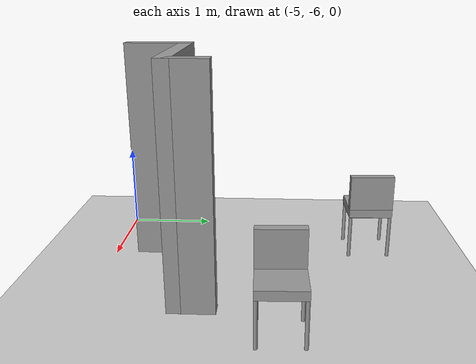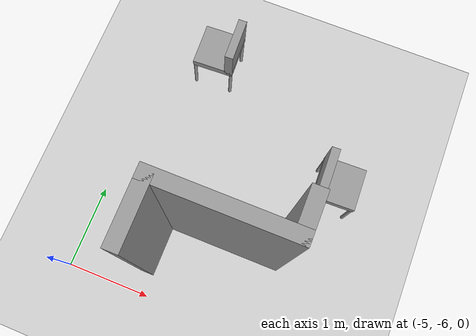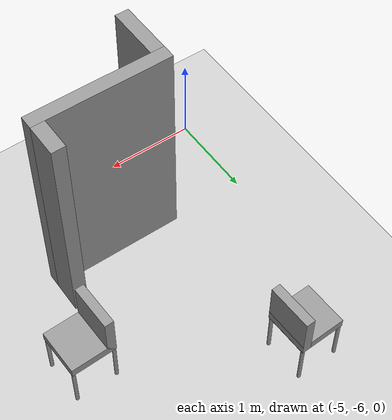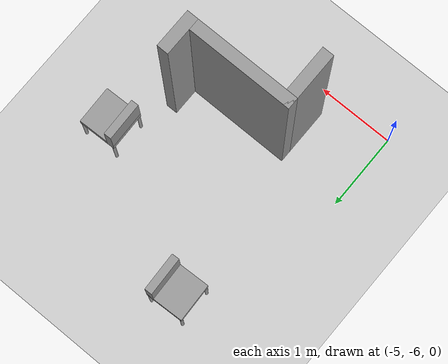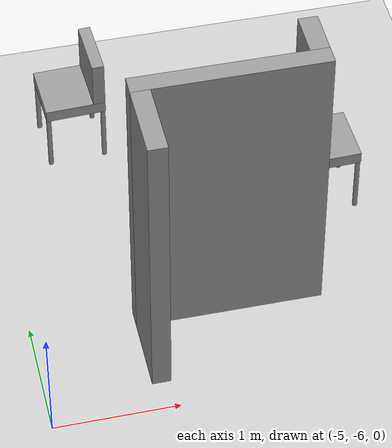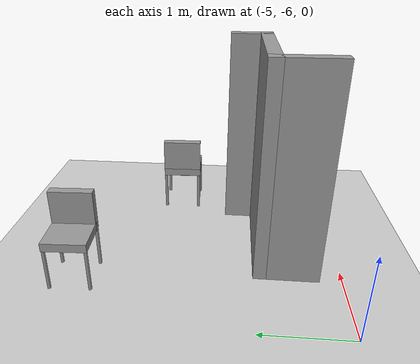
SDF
<sdf version="1.6">
 <world name="default">
  <model name="ground_plane">
   <static>1</static>
   <link name="link">
    <collision name="collision">
     <geometry><plane><normal>0 0 1</normal><size>100 100</size></plane></geometry>
     <surface>
      <contact><collide_bitmask>65535</collide_bitmask></contact>
      <friction><ode><mu>100</mu><mu2>50</mu2></ode></friction>
     </surface>
    </collision>
    <visual name="visual">
     <cast_shadows>0</cast_shadows>
     <geometry><plane><normal>0 0 1</normal><size>100 100</size></plane></geometry>
     <material>
      <script><uri>file://media/materials/scripts/gazebo.material</uri><name>Gazebo/Grey</name></script>
     </material>
    </visual>
   </link>
  </model>
  <model name="dunder_mifflin_scranton_full">
   <pose>4.5312 0.479645 0 0 -0 0</pose>
   <link name="Wall_10">
    <collision name="Wall_10_Collision">
     <geometry><box><size>1.5 0.15 2.5</size></box></geometry>
     <pose>0 0 1.25 0 -0 0</pose>
    </collision>
    <visual name="Wall_10_Visual">
     <pose>0 0 1.25 0 -0 0</pose>
     <geometry><box><size>1.5 0.15 2.5</size></box></geometry>
     <material>
      <script><uri>file://media/materials/scripts/gazebo.material</uri><name>Gazebo/Grey</name></script>
      <ambient>1 1 1 1</ambient>
     </material>
     <meta><layer>0</layer></meta>
    </visual>
    <pose>-7.95712 -5.55 0 0 -0 3.14159</pose>
   </link>
   <link name="Wall_11">
    <collision name="Wall_11_Collision">
     <geometry><box><size>0.75 0.15 2.5</size></box></geometry>
     <pose>0 0 1.25 0 -0 0</pose>
    </collision>
    <visual name="Wall_11_Visual">
     <pose>0 0 1.25 0 -0 0</pose>
     <geometry><box><size>0.75 0.15 2.5</size></box></geometry>
     <material>
      <script><uri>file://media/materials/scripts/gazebo.material</uri><name>Gazebo/Grey</name></script>
      <ambient>1 1 1 1</ambient>
     </material>
     <meta><layer>0</layer></meta>
    </visual>
    <pose>-8.63212 -5.85 0 0 -0 -1.5708</pose>
   </link>
   <link name="Wall_9">
    <collision name="Wall_9_Collision">
     <geometry><box><size>0.5 0.15 2.5</size></box></geometry>
     <pose>0 0 1.25 0 -0 0</pose>
    </collision>
    <visual name="Wall_9_Visual">
     <pose>0 0 1.25 0 -0 0</pose>
     <geometry><box><size>0.5 0.15 2.5</size></box></geometry>
     <material>
      <script><uri>file://media/materials/scripts/gazebo.material</uri><name>Gazebo/Grey</name></script>
      <ambient>1 1 1 1</ambient>
     </material>
     <meta><layer>0</layer></meta>
    </visual>
    <pose>-7.28212 -5.375 0 0 -0 -1.5708</pose>
   </link>
   <static>1</static>
  </model>
  <model name="chair_3">
   <link name="link_0">
    <inertial>
     <mass>1</mass>
     <inertia><ixx>0.145833</ixx><ixy>0</ixy><ixz>0</ixz><iyy>0.145833</iyy><iyz>0</iyz><izz>0.125</izz></inertia>
    </inertial>
    <pose>-0.23 -0.19667 -0.280001 0 -0 0</pose>
    <visual name="visual">
     <geometry><cylinder><radius>0.02</radius><length>0.5</length></cylinder></geometry>
     <material>
      <lighting>1</lighting>
      <script><uri>file://media/materials/scripts/gazebo.material</uri><name>Gazebo/Grey</name></script>
      <shader type="vertex"><normal_map>__default__</normal_map></shader>
      <ambient>0.3 0.3 0.3 1</ambient>
      <diffuse>0.7 0.7 0.7 1</diffuse>
      <specular>0.01 0.01 0.01 1</specular>
      <emissive>0 0 0 1</emissive>
     </material>
    </visual>
    <collision name="collision">
     <geometry><cylinder><radius>0.02</radius><length>0.5</length></cylinder></geometry>
     <surface>
      <friction>
       <ode><mu>1</mu><mu2>1</mu2><fdir1>0 0 0</fdir1><slip1>0</slip1><slip2>0</slip2></ode>
       <torsional>
        <coefficient>1</coefficient>
        <patch_radius>0</patch_radius>
        <surface_radius>0</surface_radius>
        <use_patch_radius>1</use_patch_radius>
        <ode><slip>0</slip></ode>
       </torsional>
      </friction>
      <bounce><restitution_coefficient>0</restitution_coefficient><threshold>1e+06</threshold></bounce>
      <contact>
       <collide_without_contact>0</collide_without_contact>
       <collide_without_contact_bitmask>1</collide_without_contact_bitmask>
       <collide_bitmask>1</collide_bitmask>
       <ode>
        <soft_cfm>0</soft_cfm>
        <soft_erp>0.2</soft_erp>
        <kp>1e+13</kp>
        <kd>1</kd>
        <max_vel>0.01</max_vel>
        <min_depth>0</min_depth>
       </ode>
       <bullet>
        <split_impulse>1</split_impulse>
        <split_impulse_penetration_threshold>-0.01</split_impulse_penetration_threshold>
        <soft_cfm>0</soft_cfm>
        <soft_erp>0.2</soft_erp>
        <kp>1e+13</kp>
        <kd>1</kd>
       </bullet>
      </contact>
     </surface>
    </collision>
   </link>
   <link name="link_0_clone">
    <inertial>
     <mass>1</mass>
     <inertia><ixx>0.145833</ixx><ixy>0</ixy><ixz>0</ixz><iyy>0.145833</iyy><iyz>0</iyz><izz>0.125</izz></inertia>
    </inertial>
    <pose>0.23 -0.19667 -0.280001 0 -0 0</pose>
    <visual name="visual">
     <geometry><cylinder><radius>0.02</radius><length>0.5</length></cylinder></geometry>
     <material>
      <lighting>1</lighting>
      <script><uri>file://media/materials/scripts/gazebo.material</uri><name>Gazebo/Grey</name></script>
      <shader type="vertex"><normal_map>__default__</normal_map></shader>
      <ambient>0.3 0.3 0.3 1</ambient>
      <diffuse>0.7 0.7 0.7 1</diffuse>
      <specular>0.01 0.01 0.01 1</specular>
      <emissive>0 0 0 1</emissive>
     </material>
    </visual>
    <collision name="collision">
     <geometry><cylinder><radius>0.02</radius><length>0.5</length></cylinder></geometry>
     <surface>
      <friction>
       <ode><mu>1</mu><mu2>1</mu2><fdir1>0 0 0</fdir1><slip1>0</slip1><slip2>0</slip2></ode>
       <torsional>
        <coefficient>1</coefficient>
        <patch_radius>0</patch_radius>
        <surface_radius>0</surface_radius>
        <use_patch_radius>1</use_patch_radius>
        <ode><slip>0</slip></ode>
       </torsional>
      </friction>
      <bounce><restitution_coefficient>0</restitution_coefficient><threshold>1e+06</threshold></bounce>
      <contact>
       <collide_without_contact>0</collide_without_contact>
       <collide_without_contact_bitmask>1</collide_without_contact_bitmask>
       <collide_bitmask>1</collide_bitmask>
       <ode>
        <soft_cfm>0</soft_cfm>
        <soft_erp>0.2</soft_erp>
        <kp>1e+13</kp>
        <kd>1</kd>
        <max_vel>0.01</max_vel>
        <min_depth>0</min_depth>
       </ode>
       <bullet>
        <split_impulse>1</split_impulse>
        <split_impulse_penetration_threshold>-0.01</split_impulse_penetration_threshold>
        <soft_cfm>0</soft_cfm>
        <soft_erp>0.2</soft_erp>
        <kp>1e+13</kp>
        <kd>1</kd>
       </bullet>
      </contact>
     </surface>
    </collision>
   </link>
   <link name="link_0_clone_0">
    <inertial>
     <mass>1</mass>
     <inertia><ixx>0.145833</ixx><ixy>0</ixy><ixz>0</ixz><iyy>0.145833</iyy><iyz>0</iyz><izz>0.125</izz></inertia>
    </inertial>
    <pose>0.23 0.26333 -0.280001 0 -0 0</pose>
    <visual name="visual">
     <geometry><cylinder><radius>0.02</radius><length>0.5</length></cylinder></geometry>
     <material>
      <lighting>1</lighting>
      <script><uri>file://media/materials/scripts/gazebo.material</uri><name>Gazebo/Grey</name></script>
      <shader type="vertex"><normal_map>__default__</normal_map></shader>
      <ambient>0.3 0.3 0.3 1</ambient>
      <diffuse>0.7 0.7 0.7 1</diffuse>
      <specular>0.01 0.01 0.01 1</specular>
      <emissive>0 0 0 1</emissive>
     </material>
    </visual>
    <collision name="collision">
     <geometry><cylinder><radius>0.02</radius><length>0.5</length></cylinder></geometry>
     <surface>
      <friction>
       <ode><mu>1</mu><mu2>1</mu2><fdir1>0 0 0</fdir1><slip1>0</slip1><slip2>0</slip2></ode>
       <torsional>
        <coefficient>1</coefficient>
        <patch_radius>0</patch_radius>
        <surface_radius>0</surface_radius>
        <use_patch_radius>1</use_patch_radius>
        <ode><slip>0</slip></ode>
       </torsional>
      </friction>
      <bounce><restitution_coefficient>0</restitution_coefficient><threshold>1e+06</threshold></bounce>
      <contact>
       <collide_without_contact>0</collide_without_contact>
       <collide_without_contact_bitmask>1</collide_without_contact_bitmask>
       <collide_bitmask>1</collide_bitmask>
       <ode>
        <soft_cfm>0</soft_cfm>
        <soft_erp>0.2</soft_erp>
        <kp>1e+13</kp>
        <kd>1</kd>
        <max_vel>0.01</max_vel>
        <min_depth>0</min_depth>
       </ode>
       <bullet>
        <split_impulse>1</split_impulse>
        <split_impulse_penetration_threshold>-0.01</split_impulse_penetration_threshold>
        <soft_cfm>0</soft_cfm>
        <soft_erp>0.2</soft_erp>
        <kp>1e+13</kp>
        <kd>1</kd>
       </bullet>
      </contact>
     </surface>
    </collision>
   </link>
   <link name="link_0_clone_1">
    <inertial>
     <mass>1</mass>
     <inertia><ixx>0.145833</ixx><ixy>0</ixy><ixz>0</ixz><iyy>0.145833</iyy><iyz>0</iyz><izz>0.125</izz></inertia>
    </inertial>
    <pose>-0.23 0.26333 -0.280001 0 -0 0</pose>
    <visual name="visual">
     <geometry><cylinder><radius>0.02</radius><length>0.5</length></cylinder></geometry>
     <material>
      <lighting>1</lighting>
      <script><uri>file://media/materials/scripts/gazebo.material</uri><name>Gazebo/Grey</name></script>
      <shader type="vertex"><normal_map>__default__</normal_map></shader>
      <ambient>0.3 0.3 0.3 1</ambient>
      <diffuse>0.7 0.7 0.7 1</diffuse>
      <specular>0.01 0.01 0.01 1</specular>
      <emissive>0 0 0 1</emissive>
     </material>
    </visual>
    <collision name="collision">
     <geometry><cylinder><radius>0.02</radius><length>0.5</length></cylinder></geometry>
     <surface>
      <friction>
       <ode><mu>1</mu><mu2>1</mu2><fdir1>0 0 0</fdir1><slip1>0</slip1><slip2>0</slip2></ode>
       <torsional>
        <coefficient>1</coefficient>
        <patch_radius>0</patch_radius>
        <surface_radius>0</surface_radius>
        <use_patch_radius>1</use_patch_radius>
        <ode><slip>0</slip></ode>
       </torsional>
      </friction>
      <bounce><restitution_coefficient>0</restitution_coefficient><threshold>1e+06</threshold></bounce>
      <contact>
       <collide_without_contact>0</collide_without_contact>
       <collide_without_contact_bitmask>1</collide_without_contact_bitmask>
       <collide_bitmask>1</collide_bitmask>
       <ode>
        <soft_cfm>0</soft_cfm>
        <soft_erp>0.2</soft_erp>
        <kp>1e+13</kp>
        <kd>1</kd>
        <max_vel>0.01</max_vel>
        <min_depth>0</min_depth>
       </ode>
       <bullet>
        <split_impulse>1</split_impulse>
        <split_impulse_penetration_threshold>-0.01</split_impulse_penetration_threshold>
        <soft_cfm>0</soft_cfm>
        <soft_erp>0.2</soft_erp>
        <kp>1e+13</kp>
        <kd>1</kd>
       </bullet>
      </contact>
     </surface>
    </collision>
   </link>
   <link name="link_2">
    <inertial>
     <mass>1</mass>
     <inertia>
      <ixx>0.166667</ixx>
      <ixy>0</ixy>
      <ixz>0</ixz>
      <iyy>0.166667</iyy>
      <iyz>0</iyz>
      <izz>0.166667</izz>
     </inertia>
    </inertial>
    <pose>0 0.03333 0.019999 0 -0 0</pose>
    <visual name="visual">
     <geometry><box><size>0.5 0.5 0.1</size></box></geometry>
     <material>
      <lighting>1</lighting>
      <script><uri>file://media/materials/scripts/gazebo.material</uri><name>Gazebo/Grey</name></script>
      <shader type="vertex"><normal_map>__default__</normal_map></shader>
      <ambient>0.3 0.3 0.3 1</ambient>
      <diffuse>0.7 0.7 0.7 1</diffuse>
      <specular>0.01 0.01 0.01 1</specular>
      <emissive>0 0 0 1</emissive>
     </material>
    </visual>
    <collision name="collision">
     <geometry><box><size>0.5 0.5 0.1</size></box></geometry>
     <surface>
      <friction>
       <ode><mu>1</mu><mu2>1</mu2><fdir1>0 0 0</fdir1><slip1>0</slip1><slip2>0</slip2></ode>
       <torsional>
        <coefficient>1</coefficient>
        <patch_radius>0</patch_radius>
        <surface_radius>0</surface_radius>
        <use_patch_radius>1</use_patch_radius>
        <ode><slip>0</slip></ode>
       </torsional>
      </friction>
      <bounce><restitution_coefficient>0</restitution_coefficient><threshold>1e+06</threshold></bounce>
      <contact>
       <collide_without_contact>0</collide_without_contact>
       <collide_without_contact_bitmask>1</collide_without_contact_bitmask>
       <collide_bitmask>1</collide_bitmask>
       <ode>
        <soft_cfm>0</soft_cfm>
        <soft_erp>0.2</soft_erp>
        <kp>1e+13</kp>
        <kd>1</kd>
        <max_vel>0.01</max_vel>
        <min_depth>0</min_depth>
       </ode>
       <bullet>
        <split_impulse>1</split_impulse>
        <split_impulse_penetration_threshold>-0.01</split_impulse_penetration_threshold>
        <soft_cfm>0</soft_cfm>
        <soft_erp>0.2</soft_erp>
        <kp>1e+13</kp>
        <kd>1</kd>
       </bullet>
      </contact>
     </surface>
    </collision>
   </link>
   <link name="link_2_clone">
    <inertial>
     <mass>1</mass>
     <inertia>
      <ixx>0.166667</ixx>
      <ixy>0</ixy>
      <ixz>0</ixz>
      <iyy>0.166667</iyy>
      <iyz>0</iyz>
      <izz>0.166667</izz>
     </inertia>
    </inertial>
    <pose>0 -0.166646 0.220004 1.5707 -0 0</pose>
    <visual name="visual">
     <geometry><box><size>0.5 0.5 0.1</size></box></geometry>
     <material>
      <lighting>1</lighting>
      <script><uri>file://media/materials/scripts/gazebo.material</uri><name>Gazebo/Grey</name></script>
      <shader type="vertex"><normal_map>__default__</normal_map></shader>
      <ambient>0.3 0.3 0.3 1</ambient>
      <diffuse>0.7 0.7 0.7 1</diffuse>
      <specular>0.01 0.01 0.01 1</specular>
      <emissive>0 0 0 1</emissive>
     </material>
    </visual>
    <collision name="collision">
     <geometry><box><size>0.5 0.5 0.1</size></box></geometry>
     <surface>
      <friction>
       <ode><mu>1</mu><mu2>1</mu2><fdir1>0 0 0</fdir1><slip1>0</slip1><slip2>0</slip2></ode>
       <torsional>
        <coefficient>1</coefficient>
        <patch_radius>0</patch_radius>
        <surface_radius>0</surface_radius>
        <use_patch_radius>1</use_patch_radius>
        <ode><slip>0</slip></ode>
       </torsional>
      </friction>
      <bounce><restitution_coefficient>0</restitution_coefficient><threshold>1e+06</threshold></bounce>
      <contact>
       <collide_without_contact>0</collide_without_contact>
       <collide_without_contact_bitmask>1</collide_without_contact_bitmask>
       <collide_bitmask>1</collide_bitmask>
       <ode>
        <soft_cfm>0</soft_cfm>
        <soft_erp>0.2</soft_erp>
        <kp>1e+13</kp>
        <kd>1</kd>
        <max_vel>0.01</max_vel>
        <min_depth>0</min_depth>
       </ode>
       <bullet>
        <split_impulse>1</split_impulse>
        <split_impulse_penetration_threshold>-0.01</split_impulse_penetration_threshold>
        <soft_cfm>0</soft_cfm>
        <soft_erp>0.2</soft_erp>
        <kp>1e+13</kp>
        <kd>1</kd>
       </bullet>
      </contact>
     </surface>
    </collision>
   </link>
   <joint name="link_0_clone_JOINT_2" type="fixed">
    <parent>link_2</parent>
    <child>link_0_clone</child>
    <physics>
     <ode><limit><cfm>0</cfm><erp>0.2</erp></limit><suspension><cfm>0</cfm><erp>0.2</erp></suspension></ode>
    </physics>
   </joint>
   <joint name="link_2_JOINT_1" type="fixed">
    <parent>link_2</parent>
    <child>link_0</child>
    <physics>
     <ode><limit><cfm>0</cfm><erp>0.2</erp></limit><suspension><cfm>0</cfm><erp>0.2</erp></suspension></ode>
    </physics>
   </joint>
   <joint name="link_2_JOINT_3" type="fixed">
    <parent>link_2</parent>
    <child>link_0_clone_0</child>
    <physics>
     <ode><limit><cfm>0</cfm><erp>0.2</erp></limit><suspension><cfm>0</cfm><erp>0.2</erp></suspension></ode>
    </physics>
   </joint>
   <joint name="link_2_JOINT_4" type="fixed">
    <parent>link_2</parent>
    <child>link_0_clone_1</child>
    <physics>
     <ode><limit><cfm>0</cfm><erp>0.2</erp></limit><suspension><cfm>0</cfm><erp>0.2</erp></suspension></ode>
    </physics>
   </joint>
   <joint name="link_2_JOINT_5" type="fixed">
    <parent>link_2</parent>
    <child>link_2_clone</child>
    <physics>
     <ode><limit><cfm>0</cfm><erp>0.2</erp></limit><suspension><cfm>0</cfm><erp>0.2</erp></suspension></ode>
    </physics>
   </joint>
   <static>0</static>
   <pose>-2.41475 -4.00996 0.530001 1e-06 -0 -1.5427</pose>
  </model>
  <model name="chair_4">
   <link name="link_0">
    <inertial>
     <mass>1</mass>
     <inertia><ixx>0.145833</ixx><ixy>0</ixy><ixz>0</ixz><iyy>0.145833</iyy><iyz>0</iyz><izz>0.125</izz></inertia>
    </inertial>
    <pose>-0.23 -0.19667 -0.280001 0 -0 0</pose>
    <visual name="visual">
     <geometry><cylinder><radius>0.02</radius><length>0.5</length></cylinder></geometry>
     <material>
      <lighting>1</lighting>
      <script><uri>file://media/materials/scripts/gazebo.material</uri><name>Gazebo/Grey</name></script>
      <shader type="vertex"><normal_map>__default__</normal_map></shader>
      <ambient>0.3 0.3 0.3 1</ambient>
      <diffuse>0.7 0.7 0.7 1</diffuse>
      <specular>0.01 0.01 0.01 1</specular>
      <emissive>0 0 0 1</emissive>
     </material>
    </visual>
    <collision name="collision">
     <geometry><cylinder><radius>0.02</radius><length>0.5</length></cylinder></geometry>
     <surface>
      <friction>
       <ode><mu>1</mu><mu2>1</mu2><fdir1>0 0 0</fdir1><slip1>0</slip1><slip2>0</slip2></ode>
       <torsional>
        <coefficient>1</coefficient>
        <patch_radius>0</patch_radius>
        <surface_radius>0</surface_radius>
        <use_patch_radius>1</use_patch_radius>
        <ode><slip>0</slip></ode>
       </torsional>
      </friction>
      <bounce><restitution_coefficient>0</restitution_coefficient><threshold>1e+06</threshold></bounce>
      <contact>
       <collide_without_contact>0</collide_without_contact>
       <collide_without_contact_bitmask>1</collide_without_contact_bitmask>
       <collide_bitmask>1</collide_bitmask>
       <ode>
        <soft_cfm>0</soft_cfm>
        <soft_erp>0.2</soft_erp>
        <kp>1e+13</kp>
        <kd>1</kd>
        <max_vel>0.01</max_vel>
        <min_depth>0</min_depth>
       </ode>
       <bullet>
        <split_impulse>1</split_impulse>
        <split_impulse_penetration_threshold>-0.01</split_impulse_penetration_threshold>
        <soft_cfm>0</soft_cfm>
        <soft_erp>0.2</soft_erp>
        <kp>1e+13</kp>
        <kd>1</kd>
       </bullet>
      </contact>
     </surface>
    </collision>
   </link>
   <link name="link_0_clone">
    <inertial>
     <mass>1</mass>
     <inertia><ixx>0.145833</ixx><ixy>0</ixy><ixz>0</ixz><iyy>0.145833</iyy><iyz>0</iyz><izz>0.125</izz></inertia>
    </inertial>
    <pose>0.23 -0.19667 -0.280001 0 -0 0</pose>
    <visual name="visual">
     <geometry><cylinder><radius>0.02</radius><length>0.5</length></cylinder></geometry>
     <material>
      <lighting>1</lighting>
      <script><uri>file://media/materials/scripts/gazebo.material</uri><name>Gazebo/Grey</name></script>
      <shader type="vertex"><normal_map>__default__</normal_map></shader>
      <ambient>0.3 0.3 0.3 1</ambient>
      <diffuse>0.7 0.7 0.7 1</diffuse>
      <specular>0.01 0.01 0.01 1</specular>
      <emissive>0 0 0 1</emissive>
     </material>
    </visual>
    <collision name="collision">
     <geometry><cylinder><radius>0.02</radius><length>0.5</length></cylinder></geometry>
     <surface>
      <friction>
       <ode><mu>1</mu><mu2>1</mu2><fdir1>0 0 0</fdir1><slip1>0</slip1><slip2>0</slip2></ode>
       <torsional>
        <coefficient>1</coefficient>
        <patch_radius>0</patch_radius>
        <surface_radius>0</surface_radius>
        <use_patch_radius>1</use_patch_radius>
        <ode><slip>0</slip></ode>
       </torsional>
      </friction>
      <bounce><restitution_coefficient>0</restitution_coefficient><threshold>1e+06</threshold></bounce>
      <contact>
       <collide_without_contact>0</collide_without_contact>
       <collide_without_contact_bitmask>1</collide_without_contact_bitmask>
       <collide_bitmask>1</collide_bitmask>
       <ode>
        <soft_cfm>0</soft_cfm>
        <soft_erp>0.2</soft_erp>
        <kp>1e+13</kp>
        <kd>1</kd>
        <max_vel>0.01</max_vel>
        <min_depth>0</min_depth>
       </ode>
       <bullet>
        <split_impulse>1</split_impulse>
        <split_impulse_penetration_threshold>-0.01</split_impulse_penetration_threshold>
        <soft_cfm>0</soft_cfm>
        <soft_erp>0.2</soft_erp>
        <kp>1e+13</kp>
        <kd>1</kd>
       </bullet>
      </contact>
     </surface>
    </collision>
   </link>
   <link name="link_0_clone_0">
    <inertial>
     <mass>1</mass>
     <inertia><ixx>0.145833</ixx><ixy>0</ixy><ixz>0</ixz><iyy>0.145833</iyy><iyz>0</iyz><izz>0.125</izz></inertia>
    </inertial>
    <pose>0.23 0.26333 -0.280001 0 -0 0</pose>
    <visual name="visual">
     <geometry><cylinder><radius>0.02</radius><length>0.5</length></cylinder></geometry>
     <material>
      <lighting>1</lighting>
      <script><uri>file://media/materials/scripts/gazebo.material</uri><name>Gazebo/Grey</name></script>
      <shader type="vertex"><normal_map>__default__</normal_map></shader>
      <ambient>0.3 0.3 0.3 1</ambient>
      <diffuse>0.7 0.7 0.7 1</diffuse>
      <specular>0.01 0.01 0.01 1</specular>
      <emissive>0 0 0 1</emissive>
     </material>
    </visual>
    <collision name="collision">
     <geometry><cylinder><radius>0.02</radius><length>0.5</length></cylinder></geometry>
     <surface>
      <friction>
       <ode><mu>1</mu><mu2>1</mu2><fdir1>0 0 0</fdir1><slip1>0</slip1><slip2>0</slip2></ode>
       <torsional>
        <coefficient>1</coefficient>
        <patch_radius>0</patch_radius>
        <surface_radius>0</surface_radius>
        <use_patch_radius>1</use_patch_radius>
        <ode><slip>0</slip></ode>
       </torsional>
      </friction>
      <bounce><restitution_coefficient>0</restitution_coefficient><threshold>1e+06</threshold></bounce>
      <contact>
       <collide_without_contact>0</collide_without_contact>
       <collide_without_contact_bitmask>1</collide_without_contact_bitmask>
       <collide_bitmask>1</collide_bitmask>
       <ode>
        <soft_cfm>0</soft_cfm>
        <soft_erp>0.2</soft_erp>
        <kp>1e+13</kp>
        <kd>1</kd>
        <max_vel>0.01</max_vel>
        <min_depth>0</min_depth>
       </ode>
       <bullet>
        <split_impulse>1</split_impulse>
        <split_impulse_penetration_threshold>-0.01</split_impulse_penetration_threshold>
        <soft_cfm>0</soft_cfm>
        <soft_erp>0.2</soft_erp>
        <kp>1e+13</kp>
        <kd>1</kd>
       </bullet>
      </contact>
     </surface>
    </collision>
   </link>
   <link name="link_0_clone_1">
    <inertial>
     <mass>1</mass>
     <inertia><ixx>0.145833</ixx><ixy>0</ixy><ixz>0</ixz><iyy>0.145833</iyy><iyz>0</iyz><izz>0.125</izz></inertia>
    </inertial>
    <pose>-0.23 0.26333 -0.280001 0 -0 0</pose>
    <visual name="visual">
     <geometry><cylinder><radius>0.02</radius><length>0.5</length></cylinder></geometry>
     <material>
      <lighting>1</lighting>
      <script><uri>file://media/materials/scripts/gazebo.material</uri><name>Gazebo/Grey</name></script>
      <shader type="vertex"><normal_map>__default__</normal_map></shader>
      <ambient>0.3 0.3 0.3 1</ambient>
      <diffuse>0.7 0.7 0.7 1</diffuse>
      <specular>0.01 0.01 0.01 1</specular>
      <emissive>0 0 0 1</emissive>
     </material>
    </visual>
    <collision name="collision">
     <geometry><cylinder><radius>0.02</radius><length>0.5</length></cylinder></geometry>
     <surface>
      <friction>
       <ode><mu>1</mu><mu2>1</mu2><fdir1>0 0 0</fdir1><slip1>0</slip1><slip2>0</slip2></ode>
       <torsional>
        <coefficient>1</coefficient>
        <patch_radius>0</patch_radius>
        <surface_radius>0</surface_radius>
        <use_patch_radius>1</use_patch_radius>
        <ode><slip>0</slip></ode>
       </torsional>
      </friction>
      <bounce><restitution_coefficient>0</restitution_coefficient><threshold>1e+06</threshold></bounce>
      <contact>
       <collide_without_contact>0</collide_without_contact>
       <collide_without_contact_bitmask>1</collide_without_contact_bitmask>
       <collide_bitmask>1</collide_bitmask>
       <ode>
        <soft_cfm>0</soft_cfm>
        <soft_erp>0.2</soft_erp>
        <kp>1e+13</kp>
        <kd>1</kd>
        <max_vel>0.01</max_vel>
        <min_depth>0</min_depth>
       </ode>
       <bullet>
        <split_impulse>1</split_impulse>
        <split_impulse_penetration_threshold>-0.01</split_impulse_penetration_threshold>
        <soft_cfm>0</soft_cfm>
        <soft_erp>0.2</soft_erp>
        <kp>1e+13</kp>
        <kd>1</kd>
       </bullet>
      </contact>
     </surface>
    </collision>
   </link>
   <link name="link_2">
    <inertial>
     <mass>1</mass>
     <inertia>
      <ixx>0.166667</ixx>
      <ixy>0</ixy>
      <ixz>0</ixz>
      <iyy>0.166667</iyy>
      <iyz>0</iyz>
      <izz>0.166667</izz>
     </inertia>
    </inertial>
    <pose>0 0.03333 0.019999 0 -0 0</pose>
    <visual name="visual">
     <geometry><box><size>0.5 0.5 0.1</size></box></geometry>
     <material>
      <lighting>1</lighting>
      <script><uri>file://media/materials/scripts/gazebo.material</uri><name>Gazebo/Grey</name></script>
      <shader type="vertex"><normal_map>__default__</normal_map></shader>
      <ambient>0.3 0.3 0.3 1</ambient>
      <diffuse>0.7 0.7 0.7 1</diffuse>
      <specular>0.01 0.01 0.01 1</specular>
      <emissive>0 0 0 1</emissive>
     </material>
    </visual>
    <collision name="collision">
     <geometry><box><size>0.5 0.5 0.1</size></box></geometry>
     <surface>
      <friction>
       <ode><mu>1</mu><mu2>1</mu2><fdir1>0 0 0</fdir1><slip1>0</slip1><slip2>0</slip2></ode>
       <torsional>
        <coefficient>1</coefficient>
        <patch_radius>0</patch_radius>
        <surface_radius>0</surface_radius>
        <use_patch_radius>1</use_patch_radius>
        <ode><slip>0</slip></ode>
       </torsional>
      </friction>
      <bounce><restitution_coefficient>0</restitution_coefficient><threshold>1e+06</threshold></bounce>
      <contact>
       <collide_without_contact>0</collide_without_contact>
       <collide_without_contact_bitmask>1</collide_without_contact_bitmask>
       <collide_bitmask>1</collide_bitmask>
       <ode>
        <soft_cfm>0</soft_cfm>
        <soft_erp>0.2</soft_erp>
        <kp>1e+13</kp>
        <kd>1</kd>
        <max_vel>0.01</max_vel>
        <min_depth>0</min_depth>
       </ode>
       <bullet>
        <split_impulse>1</split_impulse>
        <split_impulse_penetration_threshold>-0.01</split_impulse_penetration_threshold>
        <soft_cfm>0</soft_cfm>
        <soft_erp>0.2</soft_erp>
        <kp>1e+13</kp>
        <kd>1</kd>
       </bullet>
      </contact>
     </surface>
    </collision>
   </link>
   <link name="link_2_clone">
    <inertial>
     <mass>1</mass>
     <inertia>
      <ixx>0.166667</ixx>
      <ixy>0</ixy>
      <ixz>0</ixz>
      <iyy>0.166667</iyy>
      <iyz>0</iyz>
      <izz>0.166667</izz>
     </inertia>
    </inertial>
    <pose>0 -0.166646 0.220004 1.5707 -0 0</pose>
    <visual name="visual">
     <geometry><box><size>0.5 0.5 0.1</size></box></geometry>
     <material>
      <lighting>1</lighting>
      <script><uri>file://media/materials/scripts/gazebo.material</uri><name>Gazebo/Grey</name></script>
      <shader type="vertex"><normal_map>__default__</normal_map></shader>
      <ambient>0.3 0.3 0.3 1</ambient>
      <diffuse>0.7 0.7 0.7 1</diffuse>
      <specular>0.01 0.01 0.01 1</specular>
      <emissive>0 0 0 1</emissive>
     </material>
    </visual>
    <collision name="collision">
     <geometry><box><size>0.5 0.5 0.1</size></box></geometry>
     <surface>
      <friction>
       <ode><mu>1</mu><mu2>1</mu2><fdir1>0 0 0</fdir1><slip1>0</slip1><slip2>0</slip2></ode>
       <torsional>
        <coefficient>1</coefficient>
        <patch_radius>0</patch_radius>
        <surface_radius>0</surface_radius>
        <use_patch_radius>1</use_patch_radius>
        <ode><slip>0</slip></ode>
       </torsional>
      </friction>
      <bounce><restitution_coefficient>0</restitution_coefficient><threshold>1e+06</threshold></bounce>
      <contact>
       <collide_without_contact>0</collide_without_contact>
       <collide_without_contact_bitmask>1</collide_without_contact_bitmask>
       <collide_bitmask>1</collide_bitmask>
       <ode>
        <soft_cfm>0</soft_cfm>
        <soft_erp>0.2</soft_erp>
        <kp>1e+13</kp>
        <kd>1</kd>
        <max_vel>0.01</max_vel>
        <min_depth>0</min_depth>
       </ode>
       <bullet>
        <split_impulse>1</split_impulse>
        <split_impulse_penetration_threshold>-0.01</split_impulse_penetration_threshold>
        <soft_cfm>0</soft_cfm>
        <soft_erp>0.2</soft_erp>
        <kp>1e+13</kp>
        <kd>1</kd>
       </bullet>
      </contact>
     </surface>
    </collision>
   </link>
   <joint name="link_0_clone_JOINT_2" type="fixed">
    <parent>link_2</parent>
    <child>link_0_clone</child>
    <physics>
     <ode><limit><cfm>0</cfm><erp>0.2</erp></limit><suspension><cfm>0</cfm><erp>0.2</erp></suspension></ode>
    </physics>
   </joint>
   <joint name="link_2_JOINT_1" type="fixed">
    <parent>link_2</parent>
    <child>link_0</child>
    <physics>
     <ode><limit><cfm>0</cfm><erp>0.2</erp></limit><suspension><cfm>0</cfm><erp>0.2</erp></suspension></ode>
    </physics>
   </joint>
   <joint name="link_2_JOINT_3" type="fixed">
    <parent>link_2</parent>
    <child>link_0_clone_0</child>
    <physics>
     <ode><limit><cfm>0</cfm><erp>0.2</erp></limit><suspension><cfm>0</cfm><erp>0.2</erp></suspension></ode>
    </physics>
   </joint>
   <joint name="link_2_JOINT_4" type="fixed">
    <parent>link_2</parent>
    <child>link_0_clone_1</child>
    <physics>
     <ode><limit><cfm>0</cfm><erp>0.2</erp></limit><suspension><cfm>0</cfm><erp>0.2</erp></suspension></ode>
    </physics>
   </joint>
   <joint name="link_2_JOINT_5" type="fixed">
    <parent>link_2</parent>
    <child>link_2_clone</child>
    <physics>
     <ode><limit><cfm>0</cfm><erp>0.2</erp></limit><suspension><cfm>0</cfm><erp>0.2</erp></suspension></ode>
    </physics>
   </joint>
   <static>0</static>
   <pose>-4.25115 -2.96342 0.53 1e-06 1e-06 1.61096</pose>
  </model>
 </world>
</sdf>
